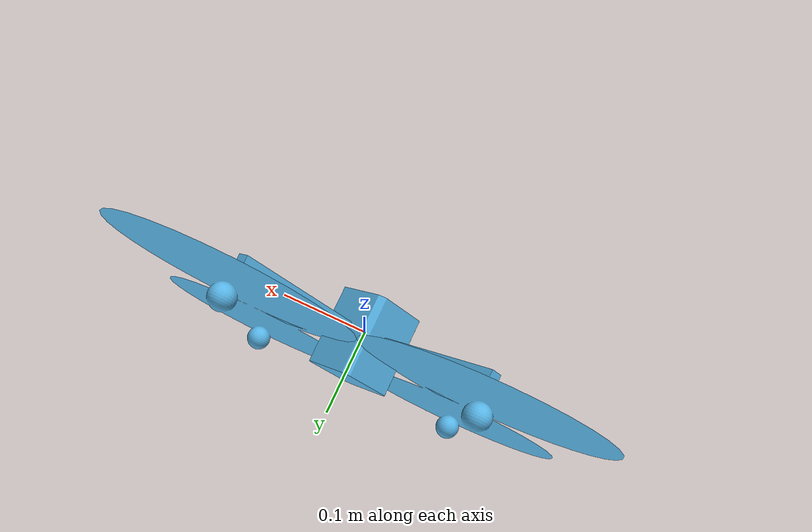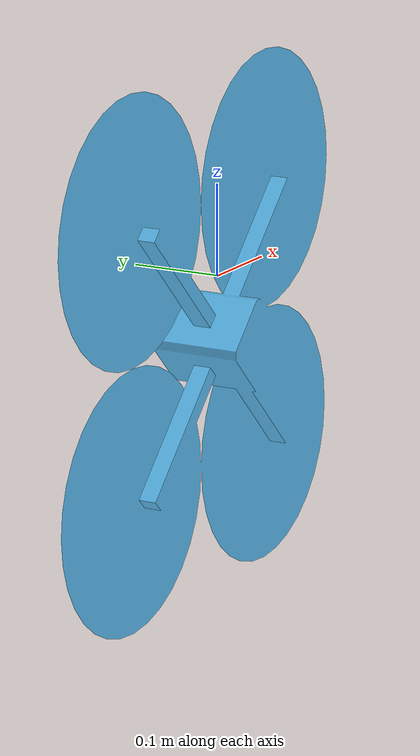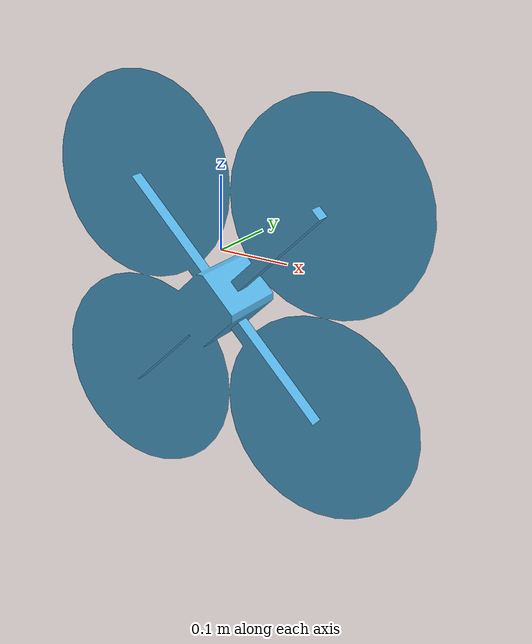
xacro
<?xml version="1.0"?>
<robot xmlns:xacro="http://www.ros.org/wiki/xacro" name="quadcopter">

  <!-- xacro include filename="quad_include.xacro" -->

  <!-- First Link and the only joint -->
  <link name="map"></link>
  <joint name="quad_joint" type="fixed">
    <!-- THe CoG of the quadcopter 7cm below of the quadcopter frame axis -->
    <origin xyz="0 0 -0.07" rpy="0 0 0"/>
    <axis xyz="0 0 1"/>
    <limit upper="0.0" lower="3.14" effort="2" velocity="2.0"/>
    <parent link="map"/>
    <child link="quad_link"/>
  </joint>

  <!-- Quadcopter Description -->
  <link name="quad_link">
    <visual name="quad_blend">
      <origin xyz="0 0 0" rpy="0 0 0"/>
      <geometry>
	      <mesh filename="package://quad_sim/quadcopter/meshes/quad.obj"/>
      </geometry>
    </visual>
    <collision>
      <origin xyz="0 0 0" rpy="0 0 0"/>
      <geometry>
	      <mesh filename="package://quad_sim/quadcopter/meshes/quad.stl"/>
      </geometry>
    </collision>
    <inertial>
      <origin xyz="0 0 0" rpy="0 0 0"/>
      <mass value="0.4"/>
      <inertia ixx="0.0038278" ixy="0.0" ixz="0.0" iyy="0.0038278" iyz="0.0" izz="0.0071345"/>
    </inertial>
  </link>

  <transmission name="trans1">
	  <type>transmission_interface/SimpleTransmission</type>
	  <joint name="quad_joint">
		  <hardwareInterface>EffortJointInterface</hardwareInterface>
	  </joint>
	  <actuator>
		  <hardwareInterface>EffortJointInterface</hardwareInterface>
	  </actuator>
  </transmission>

  <!-- xacro:include filename="world.xacro" -->

</robot>
